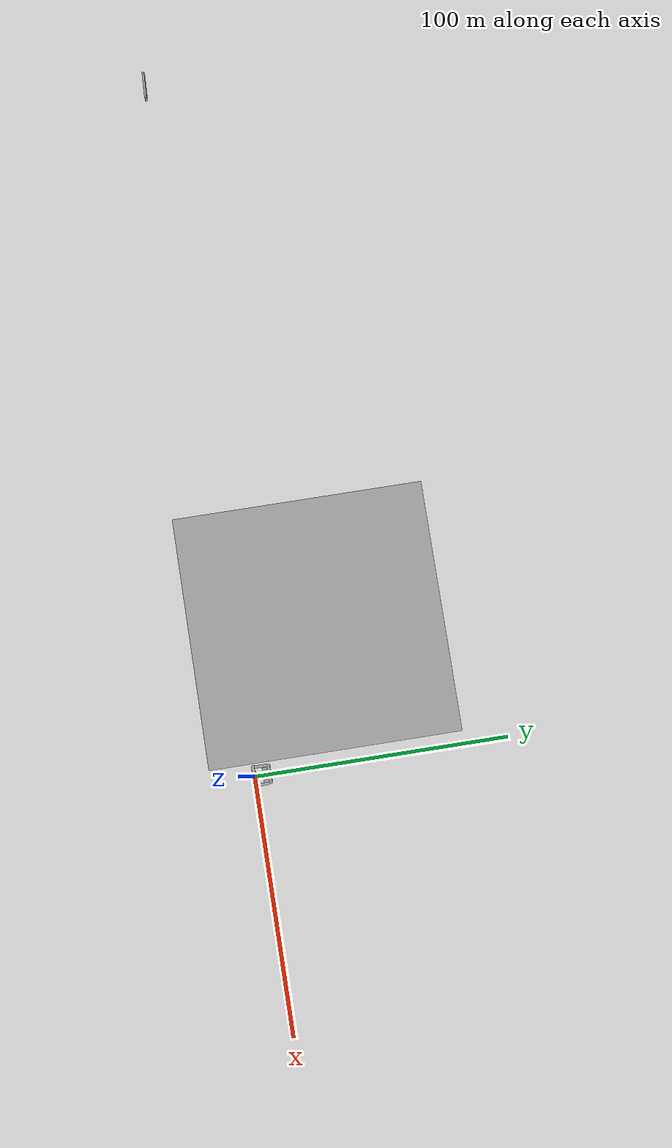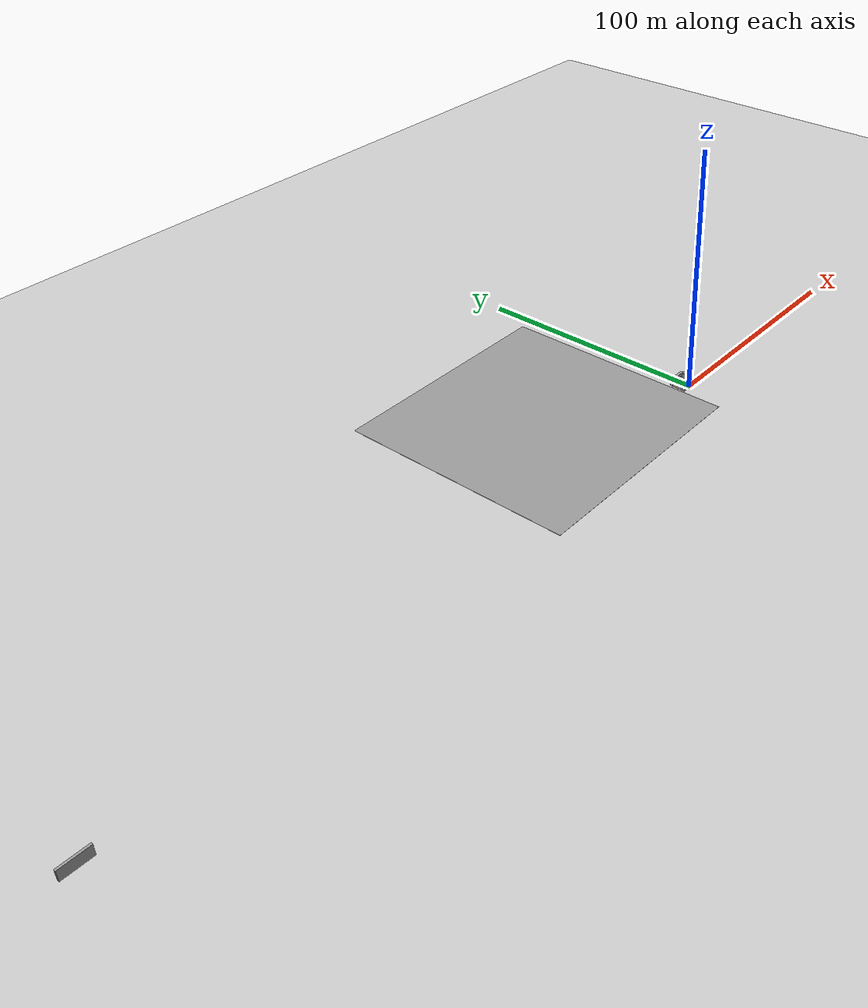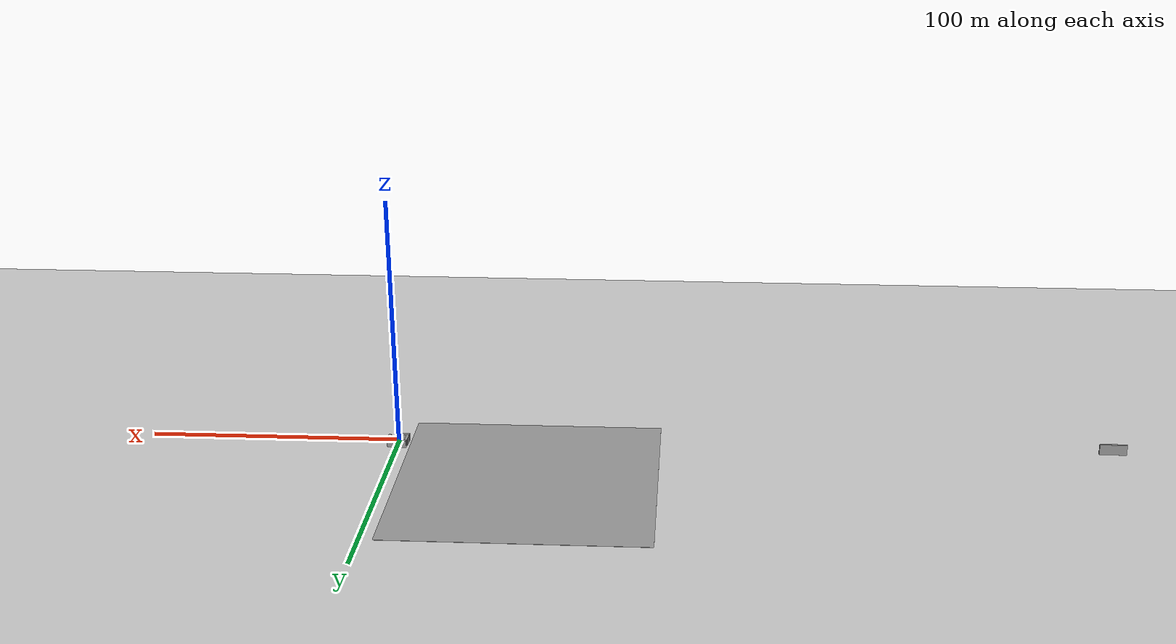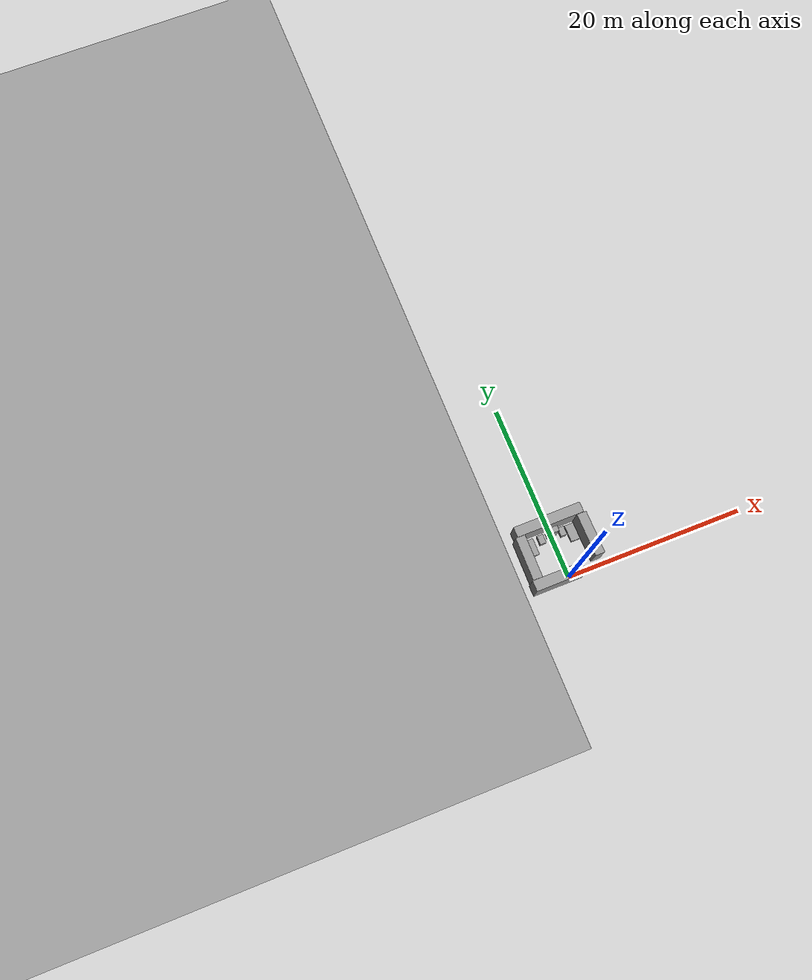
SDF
<sdf version="1.6">
 <world name="default">
  <light name="sun" type="directional">
   <pose>0 0 10 0 -0 0</pose>
   <diffuse>0.8 0.8 0.8 1</diffuse>
   <specular>0.2 0.2 0.2 1</specular>
   <attenuation>
    <range>1000</range>
    <constant>0.9</constant>
    <linear>0.01</linear>
    <quadratic>0.001</quadratic>
   </attenuation>
   <direction>-0.5 0.1 -0.9</direction>
  </light>
  <model name="ground_plane">
   <static>1</static>
   <link name="link">
    <collision name="collision">
     <geometry><plane><normal>0 0 1</normal><size>100 100</size></plane></geometry>
     <surface><friction><ode><mu>100</mu><mu2>50</mu2></ode></friction></surface>
    </collision>
    <visual name="visual">
     <cast_shadows>0</cast_shadows>
     <geometry><plane><normal>0 0 1</normal><size>100 100</size></plane></geometry>
     <material>
      <script><uri>file://media/materials/scripts/gazebo.material</uri><name>Gazebo/Grey</name></script>
     </material>
    </visual>
   </link>
  </model>
  <gravity>0 0 -9.8</gravity>
  <magnetic_field>6e-06 2.3e-05 -4.2e-05</magnetic_field>
  <atmosphere type="adiabatic"/>
  <physics name="default_physics" default="0" type="ode">
   <max_step_size>0.001</max_step_size>
   <real_time_factor>1</real_time_factor>
   <real_time_update_rate>1000</real_time_update_rate>
  </physics>
  <scene><ambient>0.4 0.4 0.4 1</ambient><background>0.7 0.7 0.7 1</background><shadows>1</shadows></scene>
  <spherical_coordinates>
   <surface_model>EARTH_WGS84</surface_model>
   <latitude_deg>0</latitude_deg>
   <longitude_deg>0</longitude_deg>
   <elevation>0</elevation>
   <heading_deg>0</heading_deg>
  </spherical_coordinates>
  <model name="unit_box">
   <pose>2.20746 4.29167 0.2067 0 5e-06 -0.000131</pose>
   <link name="link">
    <inertial>
     <mass>1</mass>
     <inertia>
      <ixx>0.166667</ixx>
      <ixy>0</ixy>
      <ixz>0</ixz>
      <iyy>0.166667</iyy>
      <iyz>0</iyz>
      <izz>0.166667</izz>
     </inertia>
    </inertial>
    <collision name="collision"><geometry><box><size>1 1.85664 0.413405</size></box></geometry></collision>
    <visual name="visual">
     <geometry><box><size>1 1.85664 0.413405</size></box></geometry>
     <material>
      <script><name>Gazebo/Grey</name><uri>file://media/materials/scripts/gazebo.material</uri></script>
     </material>
    </visual>
   </link>
  </model>
  <model name="unit_box_0">
   <pose>-0.038841 4.90888 1.22027 0 -0 0.002392</pose>
   <link name="link">
    <inertial>
     <mass>1</mass>
     <inertia>
      <ixx>0.166667</ixx>
      <ixy>0</ixy>
      <ixz>0</ixz>
      <iyy>0.166667</iyy>
      <iyz>0</iyz>
      <izz>0.166667</izz>
     </inertia>
    </inertial>
    <collision name="collision"><geometry><box><size>1.04614 0.61386 2.44055</size></box></geometry></collision>
    <visual name="visual">
     <geometry><box><size>1.04614 0.61386 2.44055</size></box></geometry>
     <material>
      <script><name>Gazebo/Grey</name><uri>file://media/materials/scripts/gazebo.material</uri></script>
     </material>
    </visual>
   </link>
  </model>
  <model name="unit_box_1_clone">
   <pose>-1.23456 4.70756 0.315591 2e-06 5e-06 0.002174</pose>
   <link name="link">
    <inertial>
     <mass>1</mass>
     <inertia>
      <ixx>0.166667</ixx>
      <ixy>0</ixy>
      <ixz>0</ixz>
      <iyy>0.166667</iyy>
      <iyz>0</iyz>
      <izz>0.166667</izz>
     </inertia>
    </inertial>
    <collision name="collision"><geometry><box><size>0.67948 1 0.631198</size></box></geometry></collision>
    <visual name="visual">
     <geometry><box><size>0.67948 1 0.631198</size></box></geometry>
     <material>
      <script><name>Gazebo/Grey</name><uri>file://media/materials/scripts/gazebo.material</uri></script>
     </material>
    </visual>
   </link>
  </model>
  <model name="unit_box_2">
   <pose>-283.991 -2.57145 2.13236 -0.000172 0.004503 -0.038072</pose>
   <link name="link">
    <inertial>
     <mass>1</mass>
     <inertia>
      <ixx>0.166667</ixx>
      <ixy>0</ixy>
      <ixz>0</ixz>
      <iyy>0.166667</iyy>
      <iyz>0</iyz>
      <izz>0.166667</izz>
     </inertia>
    </inertial>
    <collision name="collision"><geometry><box><size>10.6307 0.864185 4.31218</size></box></geometry></collision>
    <visual name="visual">
     <geometry><box><size>10.6307 0.864185 4.31218</size></box></geometry>
     <material>
      <script><name>Gazebo/Grey</name><uri>file://media/materials/scripts/gazebo.material</uri></script>
     </material>
    </visual>
   </link>
  </model>
  <model name="ground_plane_1">
   <static>1</static>
   <link name="link">
    <collision name="collision">
     <geometry><plane><normal>0 0 1</normal><size>100 100</size></plane></geometry>
     <surface><friction><ode><mu>100</mu><mu2>50</mu2></ode></friction></surface>
    </collision>
    <visual name="visual">
     <cast_shadows>0</cast_shadows>
     <geometry><plane><normal>0 0 1</normal><size>100 100</size></plane></geometry>
     <material>
      <script><uri>file://media/materials/scripts/gazebo.material</uri><name>Gazebo/Grey</name></script>
     </material>
    </visual>
   </link>
   <pose>-55.1214 32.7178 0 0 -0 0</pose>
  </model>
  <model name="unit_box_3">
   <pose>3.34674 3.03889 1.47433 0.000162 -2e-06 0.008247</pose>
   <link name="link">
    <inertial>
     <mass>1</mass>
     <inertia>
      <ixx>0.166667</ixx>
      <ixy>0</ixy>
      <ixz>0</ixz>
      <iyy>0.166667</iyy>
      <iyz>0</iyz>
      <izz>0.166667</izz>
     </inertia>
    </inertial>
    <collision name="collision"><geometry><box><size>1.05856 4.78123 2.94944</size></box></geometry></collision>
    <visual name="visual">
     <geometry><box><size>1.05856 4.78123 2.94944</size></box></geometry>
     <material>
      <script><name>Gazebo/Grey</name><uri>file://media/materials/scripts/gazebo.material</uri></script>
     </material>
    </visual>
   </link>
  </model>
  <model name="unit_box_3_clone">
   <pose>-3.73135 3.01313 1.47432 0.000167 2e-06 -0.00985</pose>
   <link name="link">
    <inertial>
     <mass>1</mass>
     <inertia>
      <ixx>0.166667</ixx>
      <ixy>0</ixy>
      <ixz>0</ixz>
      <iyy>0.166667</iyy>
      <iyz>0</iyz>
      <izz>0.166667</izz>
     </inertia>
    </inertial>
    <collision name="collision"><geometry><box><size>1.05856 4.80357 2.94944</size></box></geometry></collision>
    <visual name="visual">
     <geometry><box><size>1.05856 4.80357 2.94944</size></box></geometry>
     <material>
      <script><name>Gazebo/Grey</name><uri>file://media/materials/scripts/gazebo.material</uri></script>
     </material>
    </visual>
   </link>
  </model>
  <model name="unit_box_3_clone_0">
   <pose>-0.192596 6.02988 1.46796 0.001779 -1.1e-05 1.57684</pose>
   <link name="link">
    <inertial>
     <mass>1</mass>
     <inertia>
      <ixx>0.166667</ixx>
      <ixy>0</ixy>
      <ixz>0</ixz>
      <iyy>0.166667</iyy>
      <iyz>0</iyz>
      <izz>0.166667</izz>
     </inertia>
    </inertial>
    <collision name="collision"><geometry><box><size>1.14142 7.62028 2.94944</size></box></geometry></collision>
    <visual name="visual">
     <geometry><box><size>1.14142 7.62028 2.94944</size></box></geometry>
     <material>
      <script><name>Gazebo/Grey</name><uri>file://media/materials/scripts/gazebo.material</uri></script>
     </material>
    </visual>
   </link>
  </model>
  <model name="unit_box_3_clone_0_clone">
   <pose>-1.57688 -0.002785 1.47354 0.000418 -2e-06 1.57474</pose>
   <link name="link">
    <inertial>
     <mass>1</mass>
     <inertia>
      <ixx>0.166667</ixx>
      <ixy>0</ixy>
      <ixz>0</ixz>
      <iyy>0.166667</iyy>
      <iyz>0</iyz>
      <izz>0.166667</izz>
     </inertia>
    </inertial>
    <collision name="collision"><geometry><box><size>1.20204 5.61496 2.94943</size></box></geometry></collision>
    <visual name="visual">
     <geometry><box><size>1.20204 5.61496 2.94943</size></box></geometry>
     <material>
      <script><name>Gazebo/Grey</name><uri>file://media/materials/scripts/gazebo.material</uri></script>
     </material>
    </visual>
   </link>
  </model>
  <model name="unit_box_clone_0">
   <pose>-2.53577 4.27324 0.2067 0 -5e-06 -0.00013</pose>
   <link name="link">
    <inertial>
     <mass>1</mass>
     <inertia>
      <ixx>0.166667</ixx>
      <ixy>0</ixy>
      <ixz>0</ixz>
      <iyy>0.166667</iyy>
      <iyz>0</iyz>
      <izz>0.166667</izz>
     </inertia>
    </inertial>
    <collision name="collision"><geometry><box><size>1 1.85664 0.413405</size></box></geometry></collision>
    <visual name="visual">
     <geometry><box><size>1 1.85664 0.413405</size></box></geometry>
     <material>
      <script><name>Gazebo/Grey</name><uri>file://media/materials/scripts/gazebo.material</uri></script>
     </material>
    </visual>
   </link>
  </model>
  <model name="unit_box_1_clone_clone">
   <pose>1.20615 4.73677 0.315597 0 -1e-06 0.002176</pose>
   <link name="link">
    <inertial>
     <mass>1</mass>
     <inertia>
      <ixx>0.166667</ixx>
      <ixy>0</ixy>
      <ixz>0</ixz>
      <iyy>0.166667</iyy>
      <iyz>0</iyz>
      <izz>0.166667</izz>
     </inertia>
    </inertial>
    <collision name="collision"><geometry><box><size>0.67948 1 0.631198</size></box></geometry></collision>
    <visual name="visual">
     <geometry><box><size>0.67948 1 0.631198</size></box></geometry>
     <material>
      <script><name>Gazebo/Grey</name><uri>file://media/materials/scripts/gazebo.material</uri></script>
     </material>
    </visual>
   </link>
  </model>
 </world>
</sdf>
